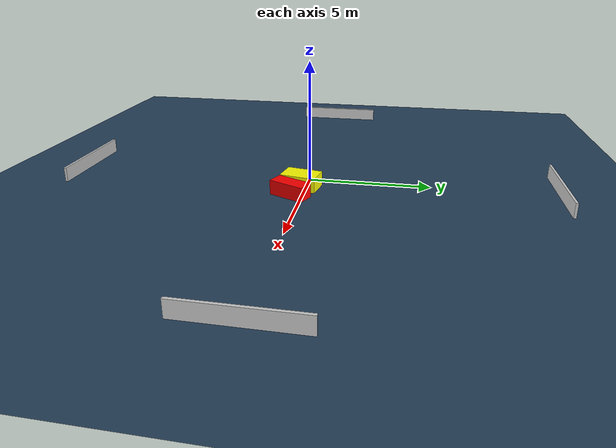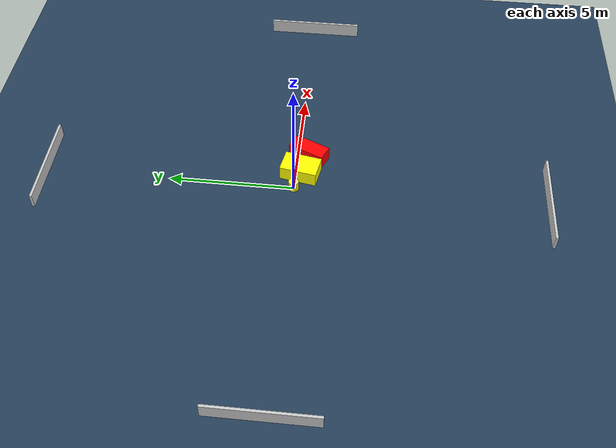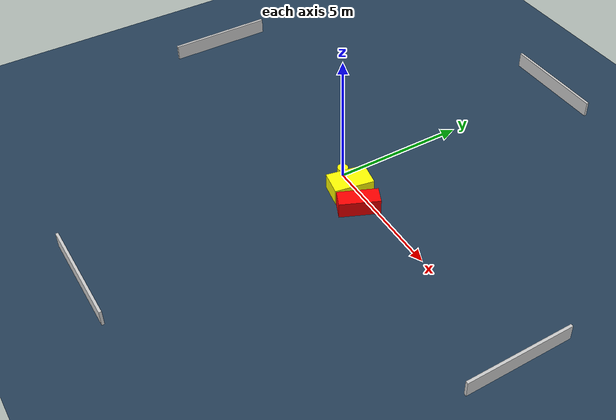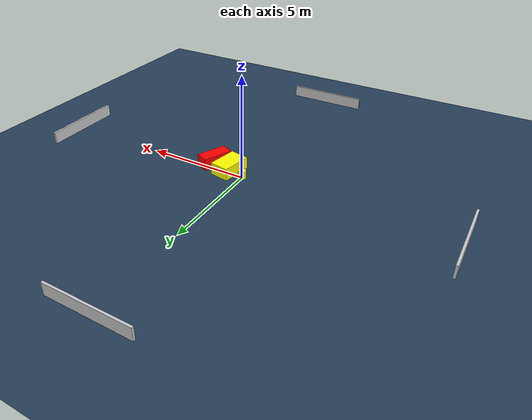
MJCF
<?xml version="1.0" ?>
<mujoco model="generated_environment">
  <option timestep="0.01" integrator="RK4" cone="elliptic"/>
  <default>
    <geom density="1"/>
  </default>
  <asset>
    <texture builtin="gradient" height="3072" name="skybox" rgb1="0.3 0.5 0.7" rgb2="0 0 0" type="skybox" width="512"/>
    <texture builtin="checker" height="300" name="groundplane" rgb1="0.2 0.3 0.4" rgb2="0.1 0.2 0.3" type="2d" width="300"/>
    <material name="groundplane" reflectance="0.2" texrepeat="5 5" texture="groundplane"/>
  </asset>
  <worldbody>
    <light dir="0 0 -1" directional="true" pos="0 0 1.5"/>
    <geom condim="3" friction="0.5 0.005 0.001" material="groundplane" name="floor" pos="0 0 0" size="0 0 0.05" type="plane"/>
    <body name="walls">
      <geom name="wall_1" condim="4" pos="-10.0 0.0 0.3" rgba="0.800000011920929 0.800000011920929 0.800000011920929 1.0" size="0.05 2.0 0.3" type="box"/>
      <geom name="wall_2" condim="4" pos="10.0 0.0 0.3" rgba="0.800000011920929 0.800000011920929 0.800000011920929 1.0" size="0.05 2.0 0.3" type="box"/>
      <geom name="wall_3" condim="4" pos="0.0 -10.0 0.3" rgba="0.800000011920929 0.800000011920929 0.800000011920929 1.0" size="2.0 0.05 0.3" type="box"/>
      <geom name="wall_4" condim="4" pos="0.0 10.0 0.3" rgba="0.800000011920929 0.800000011920929 0.800000011920929 1.0" size="2.0 0.05 0.3" type="box"/>
    </body>
    <body name="robot">
      <joint name="joint_x" type="slide" pos="0 0 0" axis="1 0 0"/>
      <joint name="joint_y" type="slide" pos="0 0 0" axis="0 1 0"/>
      <geom name="robot" type="cylinder" pos="0.0 0.0 0.2" size="0.2 0.2 0.0" mass="5.0" friction="1.0 0.005 0.0001" condim="4" rgba="1.0 1.0 0.0 1.0"/>
    </body>
    <body name="obstacle_1_movable">
      <geom name="obstacle_1_movable" condim="4" pos="0.816811146762764 -0.20191674349338992 0.3" euler="0 0 169.34392608412543" friction="0.0 0.005 0.001" rgba="1.0 1.0 0.0 1.0" size="0.4719205274791985 0.7423889002446635 0.3" type="box" mass="0.1"/>
      <joint type="free"/>
    </body>
    <body name="obstacle_2_static">
      <geom name="obstacle_2_static" condim="4" pos="1.794192604153626 -0.4551559074487543 0.3" euler="0 0 155.91882779154494" friction="0.0 0.005 0.001" rgba="1.0 0.0 0.0 1.0" size="0.32753460162313575 0.7480940642588265 0.3" type="box"/>
    </body>
  </worldbody>
  <actuator>
    <motor name="actuator_x" joint="joint_x" gear="1" ctrlrange="-1 1"/>
    <motor name="actuator_y" joint="joint_y" gear="1" ctrlrange="-1 1"/>
  </actuator>
</mujoco>
